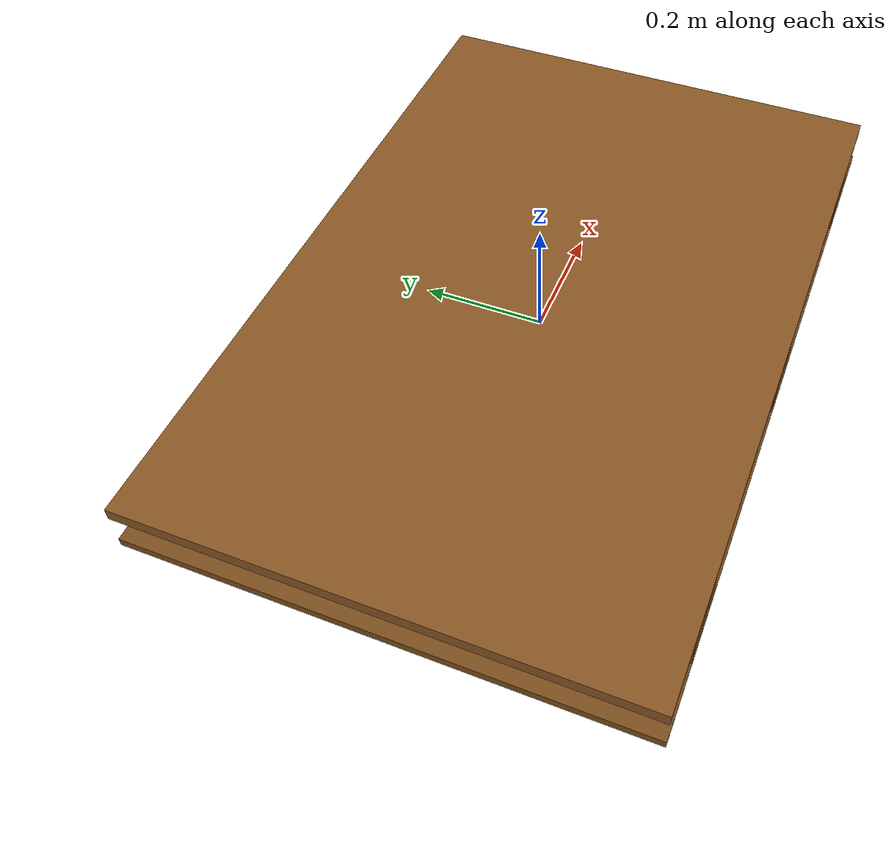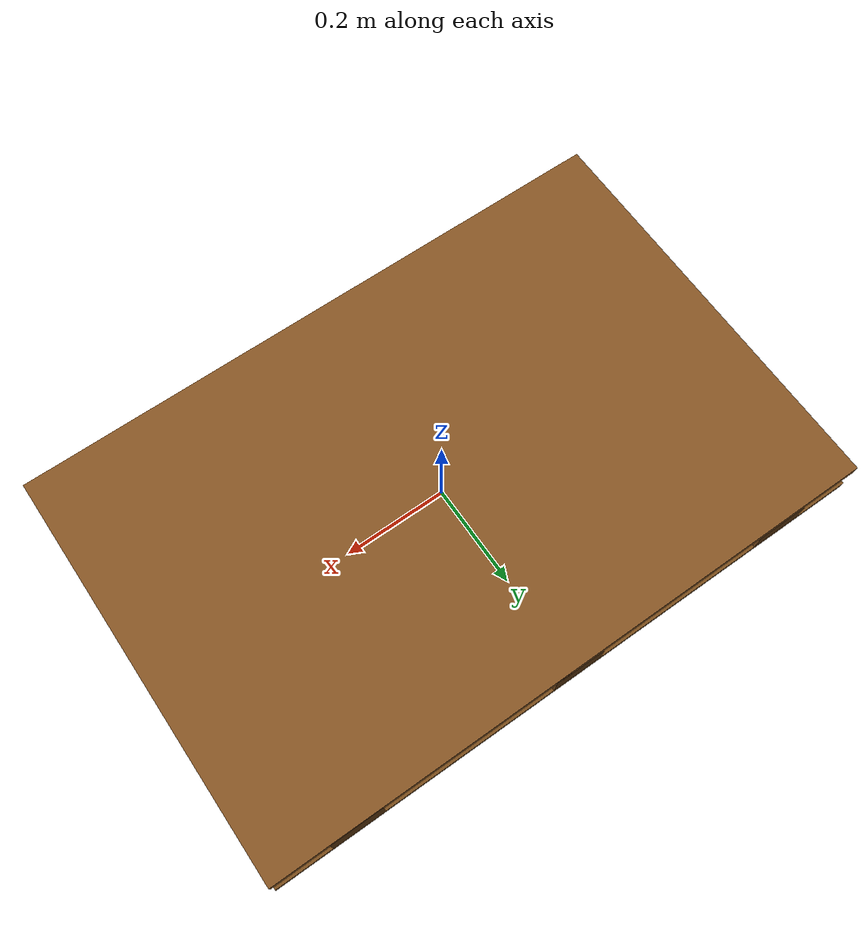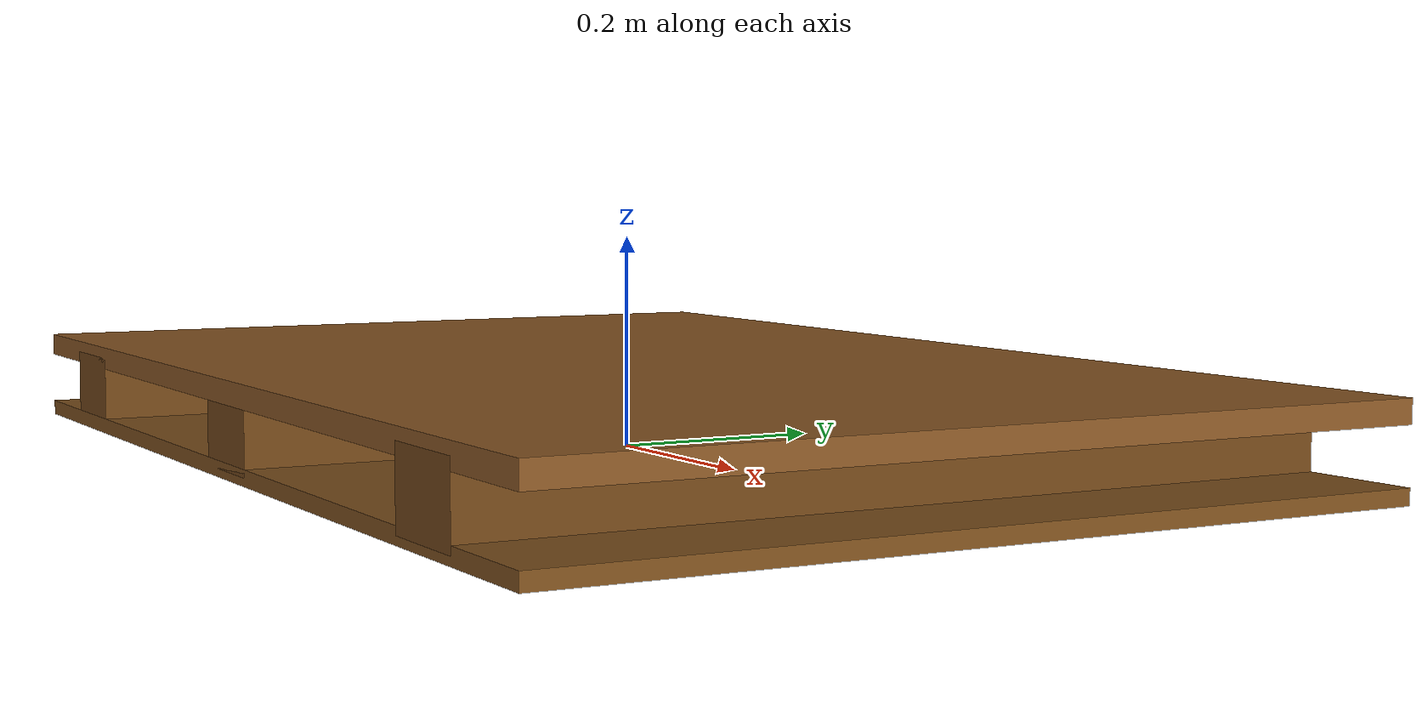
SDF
<?xml version="1.0"?>
<sdf version="1.7">
  <model name="pallet">
    <static>false</static>
    <link name="link">
      <inertial>
        <mass>15.0</mass>
        <inertia><ixx>0.5</ixx><ixy>0</ixy><ixz>0</ixz><iyy>0.8</iyy><iyz>0</iyz><izz>1.2</izz></inertia>
      </inertial>

      <!-- Top deck boards -->
      <collision name="top_deck"><pose>0 0 0.07 0 0 0</pose><geometry><box><size>1.20 0.80 0.02</size></box></geometry></collision>
      <visual name="top_deck">
        <pose>0 0 0.07 0 0 0</pose>
        <geometry><box><size>1.20 0.80 0.022</size></box></geometry>
        <material><ambient>0.55 0.35 0.15 1</ambient><diffuse>0.55 0.35 0.15 1</diffuse></material>
      </visual>

      <!-- Three support blocks -->
      <collision name="block_l"><pose>-0.44 0 0.035 0 0 0</pose><geometry><box><size>0.10 0.80 0.07</size></box></geometry></collision>
      <visual name="block_l"><pose>-0.44 0 0.035 0 0 0</pose><geometry><box><size>0.10 0.80 0.07</size></box></geometry><material><ambient>0.45 0.28 0.10 1</ambient></material></visual>

      <collision name="block_c"><pose>0 0 0.035 0 0 0</pose><geometry><box><size>0.10 0.80 0.07</size></box></geometry></collision>
      <visual name="block_c"><pose>0 0 0.035 0 0 0</pose><geometry><box><size>0.10 0.80 0.07</size></box></geometry><material><ambient>0.45 0.28 0.10 1</ambient></material></visual>

      <collision name="block_r"><pose>0.44 0 0.035 0 0 0</pose><geometry><box><size>0.10 0.80 0.07</size></box></geometry></collision>
      <visual name="block_r"><pose>0.44 0 0.035 0 0 0</pose><geometry><box><size>0.10 0.80 0.07</size></box></geometry><material><ambient>0.45 0.28 0.10 1</ambient></material></visual>

      <!-- Bottom boards -->
      <collision name="bottom_deck"><pose>0 0 0 0 0 0</pose><geometry><box><size>1.20 0.80 0.015</size></box></geometry></collision>
      <visual name="bottom_deck">
        <pose>0 0 0 0 0 0</pose>
        <geometry><box><size>1.20 0.80 0.015</size></box></geometry>
        <material><ambient>0.50 0.32 0.12 1</ambient></material>
      </visual>
    </link>
  </model>
</sdf>
